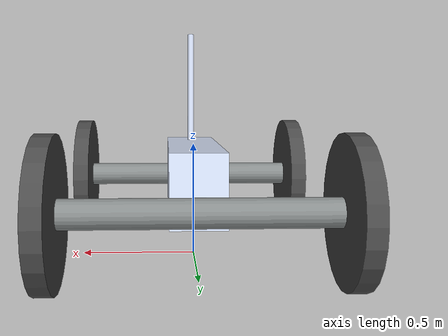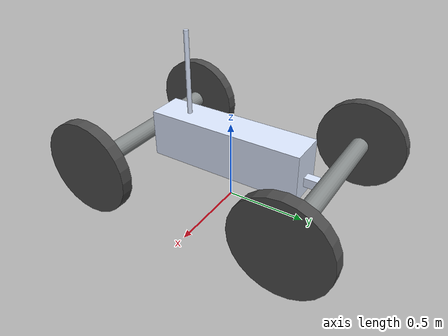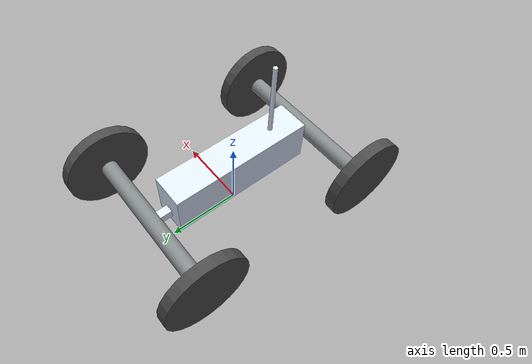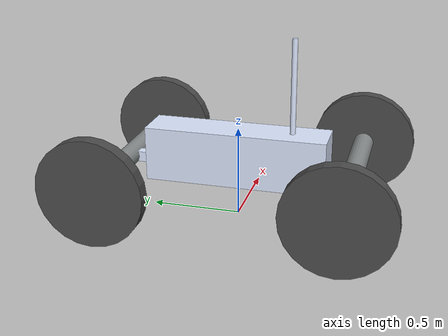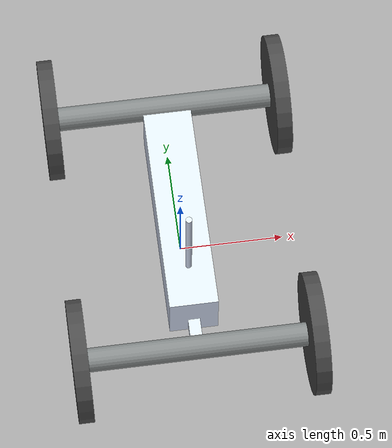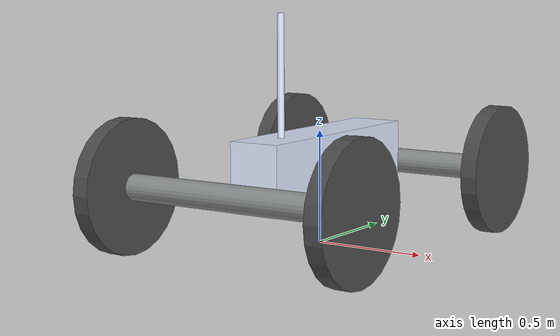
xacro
<?xml version="1.0" encoding="UTF-8"?>
<robot xmlns:xacro="http://wiki.ros.org/xacro" name="zoe2">

  <!-- Use this if parameters are set from the launch file, otherwise delete -->
  <xacro:arg name="prefix" default="" />

  <xacro:arg name="use_mock_hardware" default="false" />
  <xacro:arg name="mock_sensor_commands" default="false" />
  <xacro:arg name="sim_gazebo_classic" default="false" />
  <xacro:arg name="sim_gazebo" default="false" />
  <xacro:arg name="simulation_controllers" default="$(find zoe2_bringup)/config/zoe2_sim_controllers.yaml" />
  <xacro:arg name="lock_front_yaw" default="false" />
  <xacro:arg name="lock_front_roll" default="false" />
  <xacro:arg name="lock_back_yaw" default="false" />

  <xacro:include filename="$(find zoe2_description)/urdf/zoe2/zoe2_macro.xacro"/>
  <xacro:include filename="$(find zoe2_description)/urdf/zoe2/zoe2_macro.ros2_control.xacro"/>

  <!-- Load robot's macro with parameters -->
  <!-- set prefix if multiple robots are used -->
  <xacro:zoe2 prefix="$(arg prefix)"
    lock_front_yaw="$(arg lock_front_yaw)"
    lock_front_roll="$(arg lock_front_roll)"
    lock_back_yaw="$(arg lock_back_yaw)"
  />

  <xacro:zoe2_ros2_control
    name="zoe2"
    prefix="$(arg prefix)"
    use_mock_hardware="$(arg use_mock_hardware)"
    mock_sensor_commands="$(arg mock_sensor_commands)"
    sim_gazebo_classic="$(arg sim_gazebo_classic)"
    sim_gazebo="$(arg sim_gazebo)"
    simulation_controllers="$(arg simulation_controllers)"
    lock_front_yaw="$(arg lock_front_yaw)"
    lock_front_roll="$(arg lock_front_roll)"
    lock_back_yaw="$(arg lock_back_yaw)"
    />

</robot>

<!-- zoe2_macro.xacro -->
<!-- This macro defines the actual link-joint structure of the robot. -->
<robot xmlns:xacro="http://wiki.ros.org/xacro">

  <xacro:include filename="$(find zoe2_description)/urdf/common/inertials.xacro" />
  <xacro:include filename="$(find zoe2_description)/urdf/common/materials.xacro" />

  <xacro:include filename="$(find zoe2_description)/urdf/zoe2/parts/wheel.xacro" />
  <xacro:include filename="$(find zoe2_description)/urdf/zoe2/parts/chassis.xacro" />
  <xacro:include filename="$(find zoe2_description)/urdf/zoe2/parts/axle.xacro" />
  <xacro:include filename="$(find zoe2_description)/urdf/zoe2/parts/hinge.xacro" />
  <xacro:include filename="$(find zoe2_description)/urdf/zoe2/parts/antenna.xacro" />

  <xacro:include filename="$(find zoe2_description)/urdf/zoe2/zoe2_params.xacro" />

  <xacro:macro name="zoe2" params="
                prefix
                lock_front_yaw:=false
                lock_front_roll:=false
                lock_back_yaw:=false
                ">

    <!-- LINKS -->
    <link name = "${prefix}base_link">
    </link>

    <xacro:chassis name="${prefix}chassis" rpy="0 0 0" xyz="0 0 ${chassis_height/2}" />

    <xacro:hinge name="${prefix}front_roll" rpy="${pi/2} 0 0" xyz="0 0 0" />

    <xacro:wheel name="${prefix}wheel_front_right" rpy="0 ${pi/2} 0" xyz="0 0 0" />

    <xacro:wheel name="${prefix}wheel_front_left" rpy="0 ${-pi/2} 0" xyz="0 0 0" />

    <xacro:axle name="${prefix}front_axle" rpy="${pi/2} 0 ${pi/2}" xyz="0 0 0" />

    <xacro:wheel name="${prefix}wheel_back_right" rpy="0 ${pi/2} 0" xyz="0 0 0" />

    <xacro:wheel name="${prefix}wheel_back_left" rpy="0 ${-pi/2} 0" xyz="0 0 0" />

    <xacro:axle name="${prefix}back_axle" rpy="${pi/2} 0 ${pi/2}" xyz="0 0 0" />

    <xacro:hinge name="${prefix}back_roll" rpy="${-pi/2} 0 0" xyz="0 0 0" />

    <xacro:antenna name="${prefix}antenna" rpy="0 0 0" xyz="0 0 ${antenna_length/2}" />

    <!-- Link gazebo params -->
    <gazebo reference="wheel_back_left">
        <material>Gazebo/Black</material>
    </gazebo>

    <gazebo reference="wheel_back_right">
        <material>Gazebo/Black</material>
    </gazebo>

    <gazebo reference="wheel_front_right">
        <material>Gazebo/Black</material>
    </gazebo>

    <gazebo reference="wheel_front_left">
        <material>Gazebo/Black</material>
    </gazebo>

    <gazebo reference="chassis">
        <material>Gazebo/Blue</material>
    </gazebo>

    <gazebo reference="front_axle">
        <material>Gazebo/Blue</material>
    </gazebo>

    <gazebo reference="back_axle">
        <material>Gazebo/Blue</material>
    </gazebo>

    <!-- END LINKS -->

    <!-- JOINTS -->

    <joint name="${prefix}chassis_joint" type="fixed">
        <parent link="${prefix}base_link" />
        <child link="${prefix}chassis" />
        <origin xyz="0 0 ${base_link_height}" />
    </joint>

    <joint name="${prefix}antenna_joint" type="fixed">
        <parent link="${prefix}chassis" />
        <child link="${prefix}antenna" />
        <origin xyz="0 ${antenna_location} ${chassis_height}" />
    </joint>

    <xacro:unless value="${lock_front_roll}">
        <joint name="${prefix}axle_roll_front_joint" type="revolute">
            <parent link="${prefix}chassis" />
            <child link="${prefix}front_roll" />
            <origin xyz="0 ${(robot_length/2 - robot_hinge_length)} ${wheel_radius-base_link_height}" />
                <limit lower="-0.5" upper="0.5" effort="10" velocity="10"/>
                <axis xyz="0 1 0" />
        </joint>
    </xacro:unless>

    <xacro:if value="${lock_front_roll}">
        <joint name="${prefix}axle_roll_front_joint" type="fixed">
            <parent link="${prefix}chassis" />
            <child link="${prefix}front_roll" />
            <origin xyz="0 ${(robot_length/2 - robot_hinge_length)} ${wheel_radius-base_link_height}" />
        </joint>
    </xacro:if>

    <!--  if lock_front_yaw, make this fixed -->

    <xacro:if value="${lock_front_yaw}">
        <joint name="${prefix}axle_yaw_front_joint" type="fixed">
            <parent link="${prefix}front_roll" />
            <child link="${prefix}front_axle" />
            <origin xyz="0 ${robot_hinge_length} 0" />
        </joint>
    </xacro:if>

    <xacro:unless value="${lock_front_yaw}">
        <joint name="${prefix}axle_yaw_front_joint" type="revolute">
            <parent link="${prefix}front_roll" />
            <child link="${prefix}front_axle" />
            <origin xyz="0 ${robot_hinge_length} 0" />
            <axis xyz="0 0 1"/>
            <limit lower="${-front_vertical_limit}" upper="${front_vertical_limit}" effort="10" velocity="10"/>
        </joint>
    </xacro:unless>

    <joint name="${prefix}wheel_front_right_joint" type="continuous">
        <parent link="${prefix}front_axle" />
        <child link="${prefix}wheel_front_right" />
        <origin xyz="${robot_width/2} 0 -${axle_drop}" />
        <axis xyz="-1 0 0" />
    </joint>

    <joint name="${prefix}wheel_front_left_joint" type="continuous">
        <parent link="${prefix}front_axle" />
        <child link="${prefix}wheel_front_left" />
        <origin xyz="${-robot_width/2} 0 -${axle_drop}" />
        <axis xyz="-1 0 0" />
    </joint>

    <xacro:unless value="${lock_back_yaw}">
        <joint name="${prefix}axle_yaw_back_joint" type="revolute">
            <parent link="${prefix}back_roll" />
            <child link="${prefix}back_axle" />
            <origin xyz="0 ${-robot_hinge_length} 0" />
            <limit lower="${-front_vertical_limit}" upper="${front_vertical_limit}" effort="10" velocity="10"/>
            <axis xyz="0 0 1"/>
        </joint>
    </xacro:unless>

    <xacro:if value="${lock_back_yaw}">
        <joint name="${prefix}axle_yaw_back_joint" type="fixed">
            <parent link="${prefix}back_roll" />
            <child link="${prefix}back_axle" />
            <origin xyz="0 ${-robot_hinge_length} 0" />
        </joint>
    </xacro:if>

    <joint name="${prefix}wheel_back_right_joint" type="continuous">
        <parent link="${prefix}back_axle" />
        <child link="${prefix}wheel_back_right" />
        <origin xyz="${robot_width/2} 0 -${axle_drop}" />
        <axis xyz="-1 0 0" />
    </joint>

    <joint name="${prefix}wheel_back_left_joint" type="continuous">
        <parent link="${prefix}back_axle" />
        <child link="${prefix}wheel_back_left" />
        <origin xyz="${-robot_width/2} 0 -${axle_drop}" />
        <axis xyz="-1 0 0" />
    </joint>

    <joint name="${prefix}axle_roll_back_joint" type="fixed">
        <parent link="${prefix}chassis" />
        <child link="${prefix}back_roll" />
        <origin xyz="0 ${-(robot_length/2 - robot_hinge_length)} ${wheel_radius-base_link_height}" />
    </joint>

    <!-- END JOINTS -->

  </xacro:macro>
</robot>

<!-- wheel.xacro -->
<robot xmlns:xacro="http://www.ros.org/wiki/xacro" name="robot">
    <xacro:macro name="wheel" params="name rpy xyz">
        <link
            name="${name}">
            <inertial>
                <origin
                    xyz="${xyz}"
                    rpy="${rpy}" />
                <mass
                    value="32.3144669983568" />
                <inertia
                    ixx="1.03582581735133"
                    ixy="3.69335039891439E-06"
                    ixz="9.72371372309766E-09"
                    iyy="1.97706054850814"
                    iyz="-4.49800950049796E-08"
                    izz="1.03582581231329" />
            </inertial>
            <visual>
                <origin
                    xyz="${xyz}"
                    rpy="${rpy}" />
                <geometry>
                  <cylinder radius="${wheel_radius}" length="${wheel_thickness}"/>
                </geometry>
                <material
                    name="">
                    <color
                        rgba="0.294117647058824 0.294117647058824 0.294117647058824 1" />
                </material>
            </visual>
            <collision>
                <origin
                    xyz="${xyz}"
                    rpy="${rpy}" />
                <geometry>
                  <cylinder radius="${wheel_radius}" length="${wheel_thickness}"/>
                </geometry>
            </collision>
        </link>
    </xacro:macro>
</robot>

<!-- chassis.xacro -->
<robot xmlns:xacro="http://www.ros.org/wiki/xacro" name="robot">
    <xacro:macro name="chassis" params="name rpy xyz">
        <link
            name="${name}">
            <inertial>
                <origin
                    xyz="${xyz}"
                    rpy="${rpy}" />
                <mass
                    value="651.498299444812" />
                <inertia
                    ixx="149.816150034198"
                    ixy="2.25656686320975E-10"
                    ixz="1.4248945896711E-08"
                    iyy="204.954522277079"
                    iyz="-0.376718299070616"
                    izz="79.5488628930089" />
            </inertial>
            <visual>
                <origin
                    xyz="${xyz}"
                    rpy="${rpy}" />
                <geometry>
                    <box size="${chassis_width} ${chassis_length} ${chassis_height}" />
                </geometry>
                <material
                    name="">
                    <color
                        rgba="0.866666666666667 0.909803921568627 1 1" />
                </material>
            </visual>
            <collision>
                <origin
                    xyz="${xyz}"
                    rpy="${rpy}" />
                <geometry>
                    <box size="${chassis_width} ${chassis_length} ${chassis_height}" />
                </geometry>
            </collision>
        </link>
    </xacro:macro>
</robot>

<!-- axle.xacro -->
<robot xmlns:xacro="http://www.ros.org/wiki/xacro" name="robot">
    <xacro:macro name="axle" params="name rpy xyz" >
        <link
            name="${name}">
            <inertial>
                <origin
                    xyz="${xyz}"
                    rpy="${rpy}" />
                <mass
                    value="2.76276470983555" />
                <inertia
                    ixx="0.0151578893043941"
                    ixy="-6.10514243326588E-15"
                    ixz="-8.69280987887411E-16"
                    iyy="0.615173226679267"
                    iyz="-9.50117240753409E-16"
                    izz="0.620920397735107" />
            </inertial>
            <visual>
                <origin
                    xyz="${xyz}"
                    rpy="${rpy}" />
                <geometry>
                    <cylinder length="${axle_length}" radius="${axle_radius}" />
                </geometry>
                <material
                    name="">
                    <color
                        rgba="0.529411764705882 0.549019607843137 0.549019607843137 1" />
                </material>
            </visual>
            <collision>
                <origin
                    xyz="${xyz}"
                    rpy="${rpy}" />
                <geometry>
                    <cylinder length="${axle_length}" radius="${axle_radius}" />
                </geometry>
            </collision>
        </link>
    </xacro:macro>
</robot>

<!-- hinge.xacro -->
<robot xmlns:xacro="http://www.ros.org/wiki/xacro" name="robot">
    <xacro:macro name="hinge" params="name rpy xyz" >
        <link
            name="${name}">
            <inertial>
                <origin
                    xyz="${xyz}"
                    rpy="${rpy}" />
                <mass
                    value="1.60265212368031" />
                <inertia
                    ixx="0.00789007052519473"
                    ixy="-4.51083375595945E-06"
                    ixz="-3.52376942846933E-05"
                    iyy="0.00778556714593041"
                    iyz="1.5780343532552E-06"
                    izz="0.00273377335912292" />
            </inertial>
            <visual>
                <origin
                    xyz="${xyz}"
                    rpy="${rpy}" />
                <geometry>
                    <box size="${axle_radius} ${axle_radius} ${robot_hinge_length*2}" />
                </geometry>
                <material
                    name="">
                    <color
                        rgba="0.866666666666667 0.909803921568627 1 1" />
                </material>
            </visual>
            <collision>
                <origin
                    xyz="${xyz}"
                    rpy="${rpy}" />
                <geometry>
                    <box size="${axle_radius} ${axle_radius} ${robot_hinge_length*2}" />
                </geometry>
            </collision>
        </link>

    </xacro:macro>
</robot>

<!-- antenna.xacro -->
<robot xmlns:xacro="http://www.ros.org/wiki/xacro" name="robot">
    <xacro:macro name="antenna" params="name rpy xyz" >
        <link
            name="${name}">
            <collision>
                <origin
                    xyz="${xyz}"
                    rpy="${rpy}" />
                <geometry>
                    <cylinder length="${antenna_length}" radius="${antenna_radius}" />
                </geometry>
            </collision>
            <visual>
                <origin
                    xyz="${xyz}"
                    rpy="${rpy}" />
                <geometry>
                    <cylinder length="${antenna_length}" radius="${antenna_radius}" />
                </geometry>
                <material
                    name="">
                    <color
                        rgba="0.866666666666667 0.909803921568627 1 1" />
                </material>
            </visual>
        </link>
    </xacro:macro>
</robot>

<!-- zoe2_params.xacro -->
<robot xmlns:xacro="http://www.ros.org/wiki/xacro"  name="robot">
    <!-- all are in meters -->
    <xacro:property name="robot_width" value="1.1115" />
    <xacro:property name="robot_length" value="1.264"/>
    <xacro:property name="base_link_height" value="0.2"/>
    <!-- Chassis -->
    <xacro:property name="chassis_length" value="1"/>
    <xacro:property name="chassis_width" value="0.230"/>
    <xacro:property name="chassis_height" value="0.3"/>

    <!-- Hinge -->
    <xacro:property name="robot_hinge_length" value="0.132"/>
    <xacro:property name="front_vertical_limit" value="${pi/4}"/>
    <!-- Wheel -->
    <xacro:property name="wheel_radius" value="0.292"/>
    <xacro:property name="wheel_thickness" value="0.074"/>
    <!-- Axle -->
    <xacro:property name="axle_radius" value="0.05715"/>
    <xacro:property name="axle_length" value="${robot_width-wheel_thickness}"/>
    <xacro:property name="axle_drop" value="0"/>
    <!-- Antenna -->
    <xacro:property name="antenna_length" value="0.52"/>
    <xacro:property name="antenna_radius" value="0.015"/>
    <xacro:property name="antenna_location" value="-0.3"/>

    <!-- Speed limits -->
    <xacro:property name="max_wheel_speed" value="4.0"/>
</robot>
